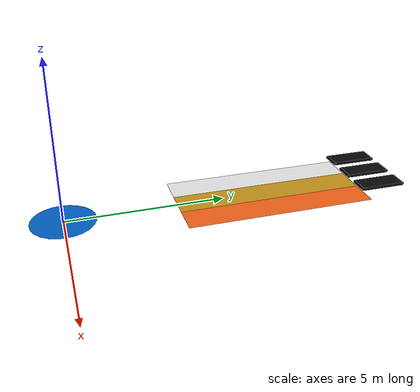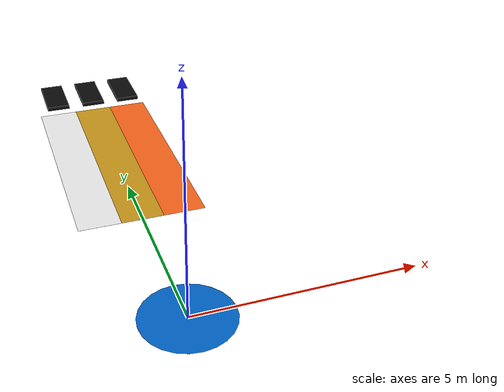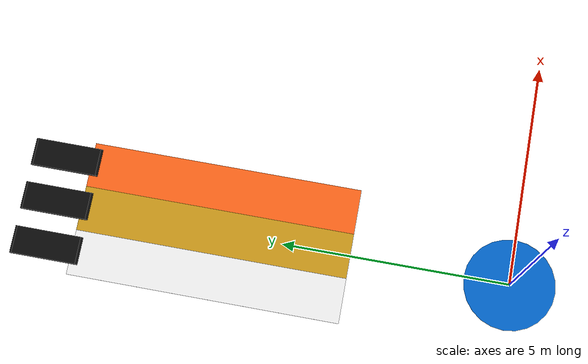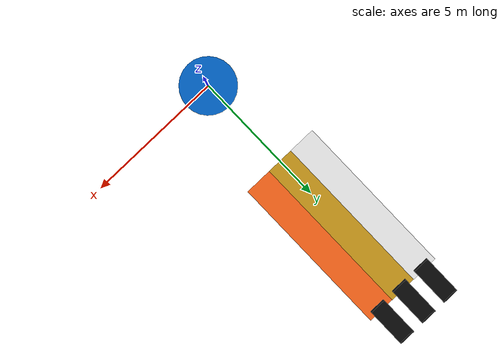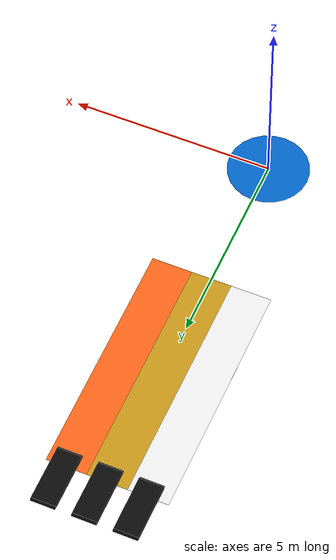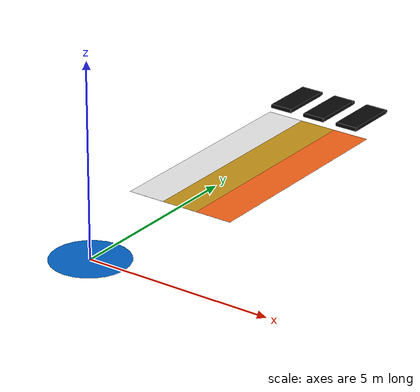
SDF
<sdf version="1.7">
 <world name="world_demo">
  <gravity>0 0 -9.8</gravity>
  <physics type="ode">
   <max_step_size>0.002</max_step_size>
   <real_time_factor>1</real_time_factor>
   <real_time_update_rate>500</real_time_update_rate>
   <max_contacts>50</max_contacts>
   <solver><type>quick</type><iters>50</iters><sor>1.3</sor></solver>
   <ode>
    <constraints>
     <cfm>0.00001</cfm>
     <erp>0.2</erp>
     <contact_max_correcting_vel>100.0</contact_max_correcting_vel>
     <contact_surface_layer>0.001</contact_surface_layer>
    </constraints>
   </ode>
  </physics>
  <plugin filename="gz-sim-physics-system" name="gz::sim::systems::Physics"/>
  <plugin filename="gz-sim-user-commands-system" name="gz::sim::systems::UserCommands"/>
  <plugin filename="gz-sim-scene-broadcaster-system" name="gz::sim::systems::SceneBroadcaster"/>
  <plugin filename="gz-sim-imu-system" name="gz::sim::systems::Imu"/>
  <plugin filename="gz-sim-sensors-system" name="gz::sim::systems::Sensors">
   <render_engine>ogre2</render_engine>
  </plugin>
  <scene>
   <ambient>1 1 1 1</ambient>
   <background>0.3 0.7 0.9 1</background>
   <shadows>0</shadows>
   <grid>false</grid>
  </scene>
  <light type="directional" name="sun">
   <cast_shadows>0</cast_shadows>
   <pose>0 0 10 0 0 0</pose>
   <diffuse>0.8 0.8 0.8 1</diffuse>
   <specular>1 1 1 1</specular>
   <direction>-0.5 0.1 -0.9</direction>
  </light>
  <model name="ground_plane">
   <static>true</static>
   <link name="link">
    <collision name="collision">
     <geometry><plane><normal>0.0 0.0 1</normal><size>1 1</size></plane></geometry>
    </collision>
   </link>
   <pose>0 0 0.01 0 0 0</pose>
  </model>
  <include><uri>model://track</uri><name>line_track</name></include>
  <include>
   <uri>model://conveyor</uri>
   <name>conveyor_1</name>
   <pose>1 10.0 0.3 0 0 1.57</pose>
   <static>1</static>
   <plugin filename="gz-sim-track-controller-system" name="gz::sim::systems::TrackController">
    <link>base_link</link>
    <odometry_publish_frequency>1</odometry_publish_frequency>
   </plugin>
   <plugin filename="gz-sim-triggered-publisher-system" name="gz::sim::systems::TriggeredPublisher">
    <input type="gz.msgs.Int32" topic="/keyboard/keypress"><match field="data">87</match></input>
    <output type="gz.msgs.Double" topic="/model/conveyor_1/link/base_link/track_cmd_vel">data: 0.5</output>
   </plugin>
   <plugin filename="gz-sim-triggered-publisher-system" name="gz::sim::systems::TriggeredPublisher">
    <input type="gz.msgs.Int32" topic="/keyboard/keypress"><match field="data">88</match></input>
    <output type="gz.msgs.Double" topic="/model/conveyor_1/link/base_link/track_cmd_vel">data: -0.5</output>
   </plugin>
   <plugin filename="gz-sim-triggered-publisher-system" name="gz::sim::systems::TriggeredPublisher">
    <input type="gz.msgs.Int32" topic="/keyboard/keypress"><match field="data">83</match></input>
    <output type="gz.msgs.Double" topic="/model/conveyor_1/link/base_link/track_cmd_vel">data: 0.0</output>
   </plugin>
  </include>
  <include>
   <uri>model://conveyor</uri>
   <name>conveyor_2</name>
   <pose>0 10.0 0.3 0 0 1.57</pose>
   <static>1</static>
   <plugin filename="gz-sim-track-controller-system" name="gz::sim::systems::TrackController">
    <link>base_link</link>
    <odometry_publish_frequency>1</odometry_publish_frequency>
   </plugin>
   <plugin filename="gz-sim-triggered-publisher-system" name="gz::sim::systems::TriggeredPublisher">
    <input type="gz.msgs.Int32" topic="/keyboard/keypress"><match field="data">87</match></input>
    <output type="gz.msgs.Double" topic="/model/conveyor_2/link/base_link/track_cmd_vel">data: 0.5</output>
   </plugin>
   <plugin filename="gz-sim-triggered-publisher-system" name="gz::sim::systems::TriggeredPublisher">
    <input type="gz.msgs.Int32" topic="/keyboard/keypress"><match field="data">88</match></input>
    <output type="gz.msgs.Double" topic="/model/conveyor_2/link/base_link/track_cmd_vel">data: -0.5</output>
   </plugin>
   <plugin filename="gz-sim-triggered-publisher-system" name="gz::sim::systems::TriggeredPublisher">
    <input type="gz.msgs.Int32" topic="/keyboard/keypress"><match field="data">83</match></input>
    <output type="gz.msgs.Double" topic="/model/conveyor_2/link/base_link/track_cmd_vel">data: 0.0</output>
   </plugin>
  </include>
  <include>
   <uri>model://conveyor</uri>
   <name>conveyor_3</name>
   <pose>-1 10.0 0.3 0 0 1.57</pose>
   <static>1</static>
   <plugin filename="gz-sim-track-controller-system" name="gz::sim::systems::TrackController">
    <link>base_link</link>
    <odometry_publish_frequency>1</odometry_publish_frequency>
   </plugin>
   <plugin filename="gz-sim-triggered-publisher-system" name="gz::sim::systems::TriggeredPublisher">
    <input type="gz.msgs.Int32" topic="/keyboard/keypress"><match field="data">87</match></input>
    <output type="gz.msgs.Double" topic="/model/conveyor_3/link/base_link/track_cmd_vel">data: 0.5</output>
   </plugin>
   <plugin filename="gz-sim-triggered-publisher-system" name="gz::sim::systems::TriggeredPublisher">
    <input type="gz.msgs.Int32" topic="/keyboard/keypress"><match field="data">88</match></input>
    <output type="gz.msgs.Double" topic="/model/conveyor_3/link/base_link/track_cmd_vel">data: -0.5</output>
   </plugin>
   <plugin filename="gz-sim-triggered-publisher-system" name="gz::sim::systems::TriggeredPublisher">
    <input type="gz.msgs.Int32" topic="/keyboard/keypress"><match field="data">83</match></input>
    <output type="gz.msgs.Double" topic="/model/conveyor_3/link/base_link/track_cmd_vel">data: 0.0</output>
   </plugin>
  </include>
 </world>
</sdf>

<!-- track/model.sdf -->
<sdf version="1.6">
  <model name="black_line_track">
    <static>true</static>
    <link name="track_link">
      <!-- Main outer loop -->

      <visual name="vertical_1_safety_yellow">
        <pose>0 6.5 0.01 0 0 1.5708</pose>
        <geometry>
          <box><size>6.0 1 0.001</size></box> <!-- Final vertical closure -->
        </geometry>
        <material>
          <ambient>0.8 0.6 0.1 1</ambient>
          <diffuse>0.8 0.6 0.1 1</diffuse>
        </material>
      </visual>

      <visual name="vertical_1_white">
        <pose>-1 6.5 0.01 0 0 1.5708</pose>
        <geometry>
          <box><size>6.0 1 0.001</size></box> <!-- Final vertical closure -->
        </geometry>
        <material>
          <ambient>0.95 0.95 0.95 1</ambient>
          <diffuse>0.95 0.95 0.95 1</diffuse>
        </material>
      </visual>

      <visual name="vertical_1_bright_orange">
        <pose>1 6.5 0.01 0 0 1.5708</pose>
        <geometry>
          <box><size>6.0 1 0.001</size></box> <!-- Final vertical closure -->
        </geometry>
        <material>
          <ambient>1.0 0.4 0.1 1</ambient>
          <diffuse>1.0 0.4 0.1 1</diffuse>
        </material>
      </visual>

      <visual name="circle">
        <pose>0 0 0.01 0 0 0</pose>
        <geometry>
          <cylinder>
            <radius>1.0</radius>  <!-- Half of your original box width (0.8/2) -->
            <length>0.001</length>    <!-- Same as your original box length -->
          </cylinder>
        </geometry>
        <material>
          <ambient>0.0 0.4 0.8 1</ambient>
          <diffuse>0.0 0.4 0.8 1</diffuse>
        </material>
      </visual>

    </link>
  </model>
</sdf>

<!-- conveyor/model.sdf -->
<sdf version="1.7">

    <model name="conveyor">

        <link name='base_link'>
            <pose relative_to='__model__'>0 0 0 0 0 0</pose>
            <inertial>
                <mass>6.06</mass>
                <inertia>
                    <ixx>0.002731</ixx>
                    <ixy>0</ixy>
                    <ixz>0</ixz>
                    <iyy>0.032554</iyy>
                    <iyz>1.5e-05</iyz>
                    <izz>0.031391</izz>
                </inertia>
            </inertial>
            <collision name='main_collision'>
                <pose relative_to='base_link'>0 0 0 0 0 0</pose>
                <geometry>
                    <box>
                        <size>1.4 0.6 0.1</size>
                    </box>
                </geometry>
                <surface>
                    <friction>
                        <ode>
                            <mu>0.7</mu>
                            <mu2>150</mu2>
                            <fdir1>0 1 0</fdir1>
                        </ode>
                    </friction>
                </surface>
            </collision>
            <collision name='collision_1'>
                <pose relative_to='base_link'>0.7 0 0 -1.570796327 0 0</pose>
                <geometry>
                    <cylinder>
                        <length>0.6</length>
                        <radius>0.05</radius>
                    </cylinder>
                </geometry>
                <surface>
                    <friction>
                        <ode>
                            <mu>0.7</mu>
                            <mu2>150</mu2>
                            <fdir1>0 1 0</fdir1>
                        </ode>
                    </friction>
                </surface>
            </collision>
            <collision name='collision_2'>
                <pose relative_to='base_link'>-0.7 0 0 -1.570796327 0 0</pose>
                <geometry>
                    <cylinder>
                        <length>0.6</length>
                        <radius>0.05</radius>
                    </cylinder>
                </geometry>
                <surface>
                    <friction>
                        <ode>
                            <mu>0.7</mu>
                            <mu2>150</mu2>
                            <fdir1>0 1 0</fdir1>
                        </ode>
                    </friction>
                </surface>
            </collision>
            <visual name='main_visual'>
                <pose relative_to='base_link'>0 0 0 0 0 0</pose>
                <geometry>
                    <box>
                        <size>1.4 0.6 0.1</size>
                    </box>
                </geometry>
                <material>
                    <ambient>0.02 0.02 0.02 1</ambient>  <!-- Near-black ambient -->
    <diffuse>0.04 0.04 0.04 1</diffuse>  <!-- Barely visible under light -->
    <specular>0.1 0.1 0.1 1</specular>  <!-- Almost matte -->
    <emissive>0 0 0 1</emissive>
                </material>

            </visual>
            <visual name='visual_1'>
                <pose relative_to='base_link'>0.7 0 0 -1.570796327 0 0</pose>
                <geometry>
                    <cylinder>
                        <length>0.6</length>
                        <radius>0.05</radius>
                    </cylinder>
                </geometry>
                <material>
                    <ambient>0.02 0.02 0.02 1</ambient>  <!-- Near-black ambient -->
    <diffuse>0.04 0.04 0.04 1</diffuse>  <!-- Barely visible under light -->
    <specular>0.1 0.1 0.1 1</specular>  <!-- Almost matte -->
    <emissive>0 0 0 1</emissive>
                </material>
            </visual>
            <visual name='visual_2'>
                <pose relative_to='base_link'>-0.7 0 0 -1.570796327 0 0</pose>
                <geometry>
                    <cylinder>
                        <length>0.6</length>
                        <radius>0.05</radius>
                    </cylinder>
                </geometry>
                <material>
                       <ambient>0.02 0.02 0.02 1</ambient>  <!-- Near-black ambient -->
    <diffuse>0.04 0.04 0.04 1</diffuse>  <!-- Barely visible under light -->
    <specular>0.1 0.1 0.1 1</specular>  <!-- Almost matte -->
    <emissive>0 0 0 1</emissive>
                </material>
            </visual>
            <gravity>1</gravity>
            <kinematic>0</kinematic>
        </link>

    </model>
</sdf>
